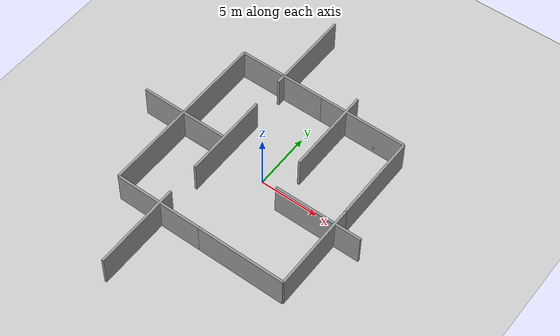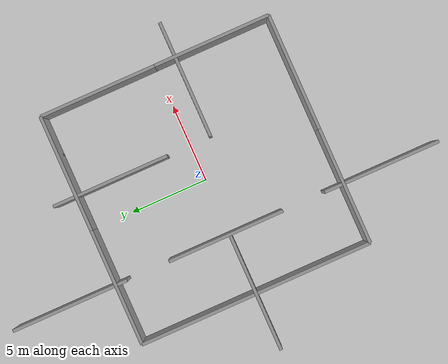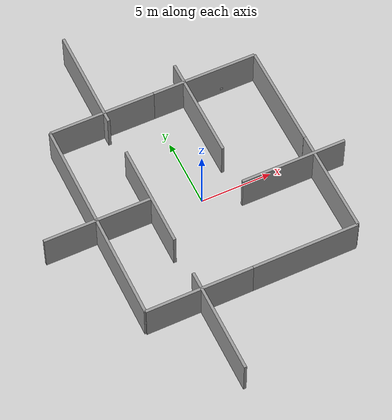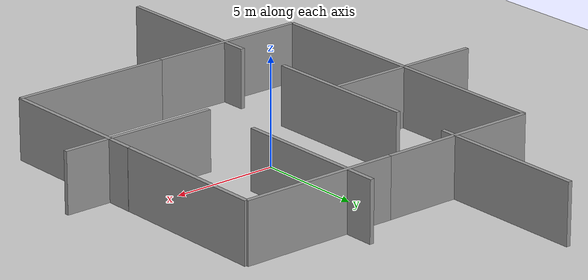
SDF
<sdf version="1.7">
 <world name="default">
  <light name="sun" type="directional">
   <pose>0 0 10 0 -0 0</pose>
   <diffuse>0.8 0.8 0.8 1</diffuse>
   <specular>0.2 0.2 0.2 1</specular>
   <attenuation>
    <range>1000</range>
    <constant>0.9</constant>
    <linear>0.01</linear>
    <quadratic>0.001</quadratic>
   </attenuation>
   <direction>-0.5 0.1 -0.9</direction>
   <spot><inner_angle>0</inner_angle><outer_angle>0</outer_angle><falloff>0</falloff></spot>
  </light>
  <model name="ground_plane">
   <static>1</static>
   <link name="link">
    <collision name="collision">
     <geometry><plane><normal>0 0 1</normal><size>100 100</size></plane></geometry>
     <surface>
      <contact><collide_bitmask>65535</collide_bitmask></contact>
      <friction><ode><mu>100</mu><mu2>50</mu2></ode></friction>
     </surface>
    </collision>
    <visual name="visual">
     <cast_shadows>0</cast_shadows>
     <geometry><plane><normal>0 0 1</normal><size>100 100</size></plane></geometry>
     <material>
      <script><uri>file://media/materials/scripts/gazebo.material</uri><name>Gazebo/Grey</name></script>
     </material>
    </visual>
   </link>
  </model>
  <gravity>0 0 -9.8</gravity>
  <magnetic_field>6e-06 2.3e-05 -4.2e-05</magnetic_field>
  <atmosphere type="adiabatic"/>
  <physics type="ode">
   <max_step_size>0.001</max_step_size>
   <real_time_factor>1</real_time_factor>
   <real_time_update_rate>1000</real_time_update_rate>
  </physics>
  <scene><ambient>0.4 0.4 0.4 1</ambient><background>0.7 0.7 0.7 1</background><shadows>1</shadows></scene>
  <spherical_coordinates>
   <surface_model>EARTH_WGS84</surface_model>
   <latitude_deg>0</latitude_deg>
   <longitude_deg>0</longitude_deg>
   <elevation>0</elevation>
   <heading_deg>0</heading_deg>
  </spherical_coordinates>
  <model name="grey_wall_1">
   <static>1</static>
   <link name="link">
    <pose>0 0 1.4 0 -0 0</pose>
    <collision name="collision"><geometry><box><size>7.5 0.2 2.8</size></box></geometry></collision>
    <visual name="visual">
     <cast_shadows>0</cast_shadows>
     <geometry><box><size>7.5 0.2 2.8</size></box></geometry>
     <material>
      <script>
       <uri>model://grey_wall/materials/scripts</uri>
       <uri>model://grey_wall/materials/textures</uri>
       <name>vrc/grey_wall</name>
      </script>
     </material>
    </visual>
   </link>
   <pose>-7.45 0 0 0 -0 0</pose>
  </model>
  <model name="grey_wall_2">
   <static>1</static>
   <link name="link">
    <pose>0 0 1.4 0 -0 0</pose>
    <collision name="collision"><geometry><box><size>7.5 0.2 2.8</size></box></geometry></collision>
    <visual name="visual">
     <cast_shadows>0</cast_shadows>
     <geometry><box><size>7.5 0.2 2.8</size></box></geometry>
     <material>
      <script>
       <uri>model://grey_wall/materials/scripts</uri>
       <uri>model://grey_wall/materials/textures</uri>
       <name>vrc/grey_wall</name>
      </script>
     </material>
    </visual>
   </link>
   <pose>-7.5 3.75 0 0 -0 1.57</pose>
  </model>
  <model name="grey_wall_3">
   <static>1</static>
   <link name="link">
    <pose>0 0 1.4 0 -0 0</pose>
    <collision name="collision"><geometry><box><size>7.5 0.2 2.8</size></box></geometry></collision>
    <visual name="visual">
     <cast_shadows>0</cast_shadows>
     <geometry><box><size>7.5 0.2 2.8</size></box></geometry>
     <material>
      <script>
       <uri>model://grey_wall/materials/scripts</uri>
       <uri>model://grey_wall/materials/textures</uri>
       <name>vrc/grey_wall</name>
      </script>
     </material>
    </visual>
   </link>
   <pose>-3.75 7.5 0 0 -0 0</pose>
  </model>
  <model name="grey_wall_4">
   <static>1</static>
   <link name="link">
    <pose>0 0 1.4 0 -0 0</pose>
    <collision name="collision"><geometry><box><size>7.5 0.2 2.8</size></box></geometry></collision>
    <visual name="visual">
     <cast_shadows>0</cast_shadows>
     <geometry><box><size>7.5 0.2 2.8</size></box></geometry>
     <material>
      <script>
       <uri>model://grey_wall/materials/scripts</uri>
       <uri>model://grey_wall/materials/textures</uri>
       <name>vrc/grey_wall</name>
      </script>
     </material>
    </visual>
   </link>
   <pose>3.75 7.5 0 0 -0 0</pose>
  </model>
  <model name="grey_wall_5">
   <static>1</static>
   <link name="link">
    <pose>0 0 1.4 0 -0 0</pose>
    <collision name="collision"><geometry><box><size>7.5 0.2 2.8</size></box></geometry></collision>
    <visual name="visual">
     <cast_shadows>0</cast_shadows>
     <geometry><box><size>7.5 0.2 2.8</size></box></geometry>
     <material>
      <script>
       <uri>model://grey_wall/materials/scripts</uri>
       <uri>model://grey_wall/materials/textures</uri>
       <name>vrc/grey_wall</name>
      </script>
     </material>
    </visual>
   </link>
   <pose>7.5 3.75 0 0 -0 1.57</pose>
  </model>
  <model name="grey_wall_6">
   <static>1</static>
   <link name="link">
    <pose>0 0 1.4 0 -0 0</pose>
    <collision name="collision"><geometry><box><size>7.5 0.2 2.8</size></box></geometry></collision>
    <visual name="visual">
     <cast_shadows>0</cast_shadows>
     <geometry><box><size>7.5 0.2 2.8</size></box></geometry>
     <material>
      <script>
       <uri>model://grey_wall/materials/scripts</uri>
       <uri>model://grey_wall/materials/textures</uri>
       <name>vrc/grey_wall</name>
      </script>
     </material>
    </visual>
   </link>
   <pose>7.5 -3.75 0 0 -0 1.57</pose>
  </model>
  <model name="grey_wall_7">
   <static>1</static>
   <link name="link">
    <pose>0 0 1.4 0 -0 0</pose>
    <collision name="collision"><geometry><box><size>7.5 0.2 2.8</size></box></geometry></collision>
    <visual name="visual">
     <cast_shadows>0</cast_shadows>
     <geometry><box><size>7.5 0.2 2.8</size></box></geometry>
     <material>
      <script>
       <uri>model://grey_wall/materials/scripts</uri>
       <uri>model://grey_wall/materials/textures</uri>
       <name>vrc/grey_wall</name>
      </script>
     </material>
    </visual>
   </link>
   <pose>-3.75 -7.5 0 0 -0 0</pose>
  </model>
  <model name="grey_wall_8">
   <static>1</static>
   <link name="link">
    <pose>0 0 1.4 0 -0 0</pose>
    <collision name="collision"><geometry><box><size>7.5 0.2 2.8</size></box></geometry></collision>
    <visual name="visual">
     <cast_shadows>0</cast_shadows>
     <geometry><box><size>7.5 0.2 2.8</size></box></geometry>
     <material>
      <script>
       <uri>model://grey_wall/materials/scripts</uri>
       <uri>model://grey_wall/materials/textures</uri>
       <name>vrc/grey_wall</name>
      </script>
     </material>
    </visual>
   </link>
   <pose>-7.5 -3.75 0 0 -0 1.57</pose>
  </model>
  <model name="grey_wall_9">
   <static>1</static>
   <link name="link">
    <pose>0 0 1.4 0 -0 0</pose>
    <collision name="collision"><geometry><box><size>7.5 0.2 2.8</size></box></geometry></collision>
    <visual name="visual">
     <cast_shadows>0</cast_shadows>
     <geometry><box><size>7.5 0.2 2.8</size></box></geometry>
     <material>
      <script>
       <uri>model://grey_wall/materials/scripts</uri>
       <uri>model://grey_wall/materials/textures</uri>
       <name>vrc/grey_wall</name>
      </script>
     </material>
    </visual>
   </link>
   <pose>6.00 -1.35 0 0 -0 0</pose>
  </model>
  <model name="grey_wall_10">
   <static>1</static>
   <link name="link">
    <pose>0 0 1.4 0 -0 0</pose>
    <collision name="collision"><geometry><box><size>7.5 0.2 2.8</size></box></geometry></collision>
    <visual name="visual">
     <cast_shadows>0</cast_shadows>
     <geometry><box><size>7.5 0.2 2.8</size></box></geometry>
     <material>
      <script>
       <uri>model://grey_wall/materials/scripts</uri>
       <uri>model://grey_wall/materials/textures</uri>
       <name>vrc/grey_wall</name>
      </script>
     </material>
    </visual>
   </link>
   <pose>-3.6 10.5 0 0 -0 1.57</pose>
  </model>
  <model name="grey_wall_11">
   <static>1</static>
   <link name="link">
    <pose>0 0 1.4 0 -0 0</pose>
    <collision name="collision"><geometry><box><size>7.5 0.2 2.8</size></box></geometry></collision>
    <visual name="visual">
     <cast_shadows>0</cast_shadows>
     <geometry><box><size>7.5 0.2 2.8</size></box></geometry>
     <material>
      <script>
       <uri>model://grey_wall/materials/scripts</uri>
       <uri>model://grey_wall/materials/textures</uri>
       <name>vrc/grey_wall</name>
      </script>
     </material>
    </visual>
   </link>
   <pose>-3.6 -10.0 0 0 -0 1.57</pose>
  </model>
  <model name="grey_wall_12">
   <static>1</static>
   <link name="link">
    <pose>0 0 1.4 0 -0 0</pose>
    <collision name="collision"><geometry><box><size>7.5 0.2 2.8</size></box></geometry></collision>
    <visual name="visual">
     <cast_shadows>0</cast_shadows>
     <geometry><box><size>7.5 0.2 2.8</size></box></geometry>
     <material>
      <script>
       <uri>model://grey_wall/materials/scripts</uri>
       <uri>model://grey_wall/materials/textures</uri>
       <name>vrc/grey_wall</name>
      </script>
     </material>
    </visual>
   </link>
   <pose>-3.6 0.25 0 0 -0 1.57</pose>
  </model>
  <model name="grey_wall_13">
   <static>1</static>
   <link name="link">
    <pose>0 0 1.4 0 -0 0</pose>
    <collision name="collision"><geometry><box><size>7.5 0.2 2.8</size></box></geometry></collision>
    <visual name="visual">
     <cast_shadows>0</cast_shadows>
     <geometry><box><size>7.5 0.2 2.8</size></box></geometry>
     <material>
      <script>
       <uri>model://grey_wall/materials/scripts</uri>
       <uri>model://grey_wall/materials/textures</uri>
       <name>vrc/grey_wall</name>
      </script>
     </material>
    </visual>
   </link>
   <pose>2.25 5.25 0 0 -0 1.57</pose>
  </model>
  <model name="grey_wall_14">
   <static>1</static>
   <link name="link">
    <pose>0 0 1.4 0 -0 0</pose>
    <collision name="collision"><geometry><box><size>7.5 0.2 2.8</size></box></geometry></collision>
    <visual name="visual">
     <cast_shadows>0</cast_shadows>
     <geometry><box><size>7.5 0.2 2.8</size></box></geometry>
     <material>
      <script>
       <uri>model://grey_wall/materials/scripts</uri>
       <uri>model://grey_wall/materials/textures</uri>
       <name>vrc/grey_wall</name>
      </script>
     </material>
    </visual>
   </link>
   <pose>3.75 -7.5 0 0 -0 0</pose>
  </model>
  <model name="ar_marker">
   <static>1</static>
   <link name="marker">
    <gravity>0</gravity>
    <visual name="visual">
     <geometry><box><size>0.2 0.2 0.002</size></box></geometry>
     <material>
      <script>
       <uri>model://ar_marker/material/scripts</uri>
       <uri>model://ar_marker/material/textures</uri>
       <name>Aruco/ar_marker</name>
      </script>
     </material>
    </visual>
    <collision name="collision"><geometry><box><size>0.2 0.2 0.002</size></box></geometry></collision>
   </link>
   <pose>5.0 7.4 0.5 1.57 4.71 0</pose>
  </model>
 </world>
</sdf>
